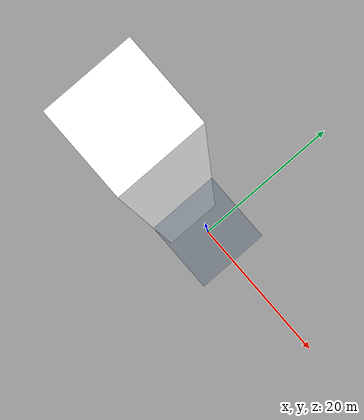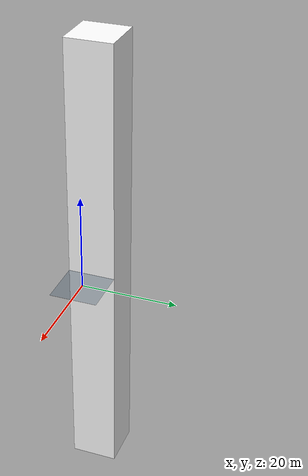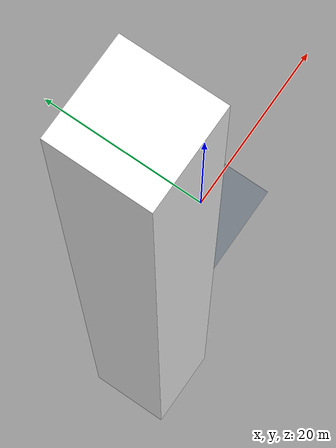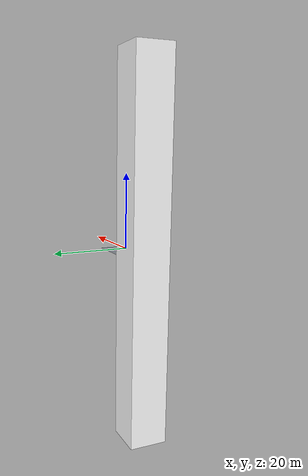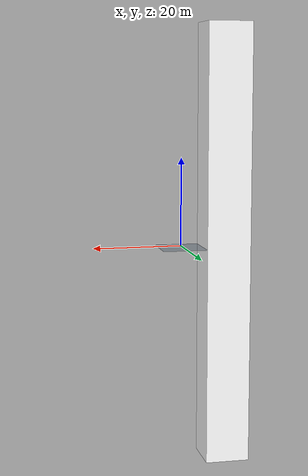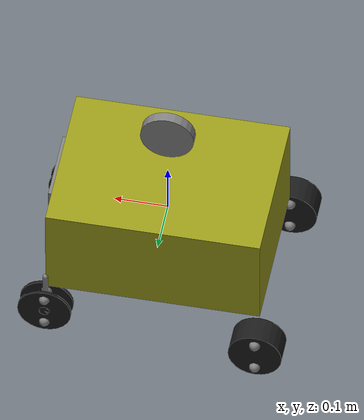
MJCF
<mujoco model="rover4We-field (v0.1)">

	<include file="rover4We-only.xml"/>

	<asset>
		<texture name="floor_tex" type="2d" builtin="checker" rgb1=".2 .3 .4" rgb2=".1 .2 .3" width="100" height="100" />
		<material name="floor_material" texture="floor_tex" texuniform="true" />
	</asset>

	<worldbody>
		<geom name="ground" type="plane" size="5 5 1" pos="0 0 -.25" material="floor_material"/>
	</worldbody>
</mujoco>

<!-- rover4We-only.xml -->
<mujoco model="rover4We (v0.2)">

    <compiler inertiafromgeom="true" angle="degree"/>
	<option	timestep="0.02" gravity="0 0 -9.81"/>

	<asset>
		<material name="MatWheel" specular="1" rgba=".1 .1 .1 1"/>
		<material name="MatBody" specular="1" rgba=".6 .6 .1 1"/>
	</asset>

	<default>
		<!--making every geom collidable. expect those that dont are default-->
		<geom contype="1" conaffinity="1"/>
	</default>

	<default class="acker_solver_param">
		<!--solver impedance and reference(?) for ackerman equality constraint-->
		<!--default solimp: "0.900 0.950 0.001"-->
		<!--default solref: "0.020 1.000"-->
		<!--solref: (timeconst, dampratio)
			b = 2 / (dmax * timeconst)
			k = d(r) / (dmax * dmax * timeconst * timeconst * dampratio * dampratio)
		-->
		<equality solimp="0.9950 0.9990 0.0001" solref="0.0100 0.7500"/>
	</default>

	<visual>
		<headlight active="1"/>
		<scale camera=".5"/>
		<map znear="0.001" zfar="1000"/>
	</visual>

    <worldbody>
		<body>
			<geom type="box" pos="-10 0 0" size="5 5 50" rgba="1 1 1 1"/>
		</body>
		<body name="rover" pos="0 0 0">

			<light name="lamp" active="true" directional="true" cutoff="4" exponent="20" diffuse="1 1 1" specular="0 0 0" pos="0 0 2.5" dir="0 0 -1 "/>

			<camera name="first-person" mode="fixed" pos=".22 0 .08" euler="180 -133 -90" fovy="90"/>

			<joint name="centroid" type="free" pos="0 0 0"/>
            <geom name="rover-body" type="box" pos="0 0 0" size="0.2 0.15 .095" mass="12" material="MatBody"/>
			<site type="box" size=".01 .07 .07" pos=".2 0 0"/>
            <body name="r-l-wheel" pos="-0.2 0.15 -0.15">
                <joint name="r-l-drive-hinge" type="hinge" pos="0 0 0" axis="0 1 0" damping="0.01" />
                <geom type="cylinder" size=".05" fromto="0 0 0 0 0.05 0" mass=".125" material="MatWheel" condim="4"/>
				<site size=".01" pos="0 .05 .03"/>
				<site size=".01" pos="0 .05 -.03"/>
				<site size=".01" pos="0 0 .03"/>
				<site size=".01" pos="0 0 -.03"/>
            </body>
            <body name="r-r-wheel" pos="-0.2 -0.15 -0.15">
                <joint name="r-r-drive-hinge" type="hinge" pos="0 0 0" axis="0 1 0" damping="0.01"/>
                <geom type="cylinder" size=".05" fromto="0 0 0 0 -0.05 0" mass=".125" material="MatWheel" condim="4"/>
				<site size=".01" pos="0 -.05 .03"/>
				<site size=".01" pos="0 -.05 -.03"/>
				<site size=".01" pos="0 0 .03"/>
				<site size=".01" pos="0 0 -.03"/>
            </body>
			<body name="ghost-steer-wheel" pos="0 0 .2">
                <joint name="ghost-steer-hinge" type="hinge" pos="0 0 0" axis="0 0 1" limited="true" range="-17 17" damping="0"/>
				<geom type="cylinder" size=".05 .01" axisangle="1 0 0 90" contype="2" conaffinity="2" mass="0.002"/>
			</body>
			<body name="f-l-wheel" pos=".2 0.15 -.15">
				<geom type="capsule" size = ".005" fromto="0 0 0 0 0 .08" contype="2" conaffinity="2"/>
				<joint name="f-l-steer-hinge" type="hinge" pos="0 0 0" axis="0 0 1" damping="0.01" limited="true" range="-40 40"/>
				<body>
					<geom type="cylinder" size=".01" fromto="0 -.015 0 0 0.015 0" mass=".125" material="MatWheel"/>
					<body>
						<joint name="f-l-drive-hinge-1" type="hinge" pos="0 0 0" axis="0 1 0" damping="0.01"/>
						<geom type="cylinder" size=".05" fromto="0 -.015 0 0 -0.010 0" mass=".125" material="MatWheel" condim="4"/>
					<site size=".01" pos="0 -0.0125  0.03"/>
					<site size=".01" pos="0 -0.0125 -0.03"/>
					</body>
					<body>
						<joint name="f-l-drive-hinge-2" type="hinge" pos="0 0 0" axis="0 1 0" damping="0.01"/>
						<geom type="cylinder" size=".05" fromto="0 .010 0 0 0.015 0" mass=".125" material="MatWheel" condim="4"/>
						<site size=".01" pos="0  0.0125  0.03"/>
						<site size=".01" pos="0  0.0125 -0.03"/>
					</body>
				</body>
			</body>
			<body name="f-r-wheel" pos=".2 -0.15 -.15">
				<geom type="capsule" size = ".005" fromto="0 0 0 0 0 .08" contype="2" conaffinity="2"/>
				<joint name="f-r-steer-hinge" type="hinge" pos="0 0 0" axis="0 0 1" damping="0.01" limited="true" range="-40 40"/>

				<body>
					<geom type="cylinder" size=".01" fromto="0 -.015 0 0 0.015 0" mass=".125" material="MatWheel"/>
					<body>
						<joint name="f-l-drive-hinge-3" type="hinge" pos="0 0 0" axis="0 1 0" damping="0.01"/>
						<geom type="cylinder" size=".05" fromto="0 -.015 0 0 -0.010 0" mass=".125" material="MatWheel" condim="4"/>
					<site size=".01" pos="0 -0.0125  0.03"/>
					<site size=".01" pos="0 -0.0125 -0.03"/>
					</body>
					<body>
						<joint name="f-l-drive-hinge-4" type="hinge" pos="0 0 0" axis="0 1 0" damping="0.01"/>
						<geom type="cylinder" size=".05" fromto="0 .010 0 0 0.015 0" mass=".125" material="MatWheel" condim="4"/>
						<site size=".01" pos="0  0.0125  0.03"/>
						<site size=".01" pos="0  0.0125 -0.03"/>
					</body>
				</body>
			</body>

        </body>
    </worldbody>

	<tendon>
		<fixed name="rear-differential">
			<joint joint="r-l-drive-hinge" coef="1"/>
			<joint joint="r-r-drive-hinge" coef="1"/>
		</fixed>
	</tendon>

    <actuator>
        <position name="ghost-steer" joint="ghost-steer-hinge" ctrllimited="true" ctrlrange="-.29 .29" gear="1"/>
        <motor name="drive" tendon="rear-differential" ctrllimited="true" ctrlrange="-1.0 1.0" gear="1.5"/>
    </actuator>
	<!--
		joint1: y
		joint2: x
		polycoef: a0 a1 a2 a3 a4
		y-y0 = a0 + a1*(x-x0) + a2*(x-x0)^2 + a3*(x-x0)^3 + a4*(x-x0)^4
	-->
	<equality>
		<joint name="f-l-steer-hinge" joint1="f-l-steer-hinge" joint2="ghost-steer-hinge" polycoef="0.000093610018132620019 2.0041497325730204 1.4716131190668178 -1.0929725380842041 -3.2252012765547819" class="acker_solver_param"/>
		<joint name="f-r-steer-hinge" joint1="f-r-steer-hinge" joint2="ghost-steer-hinge" polycoef="-0.00017013070152971507 2.0039379507086514 -1.4684576386267671 -1.0901354124362155 3.1974185558159771" class="acker_solver_param"/>
	</equality>

</mujoco>
